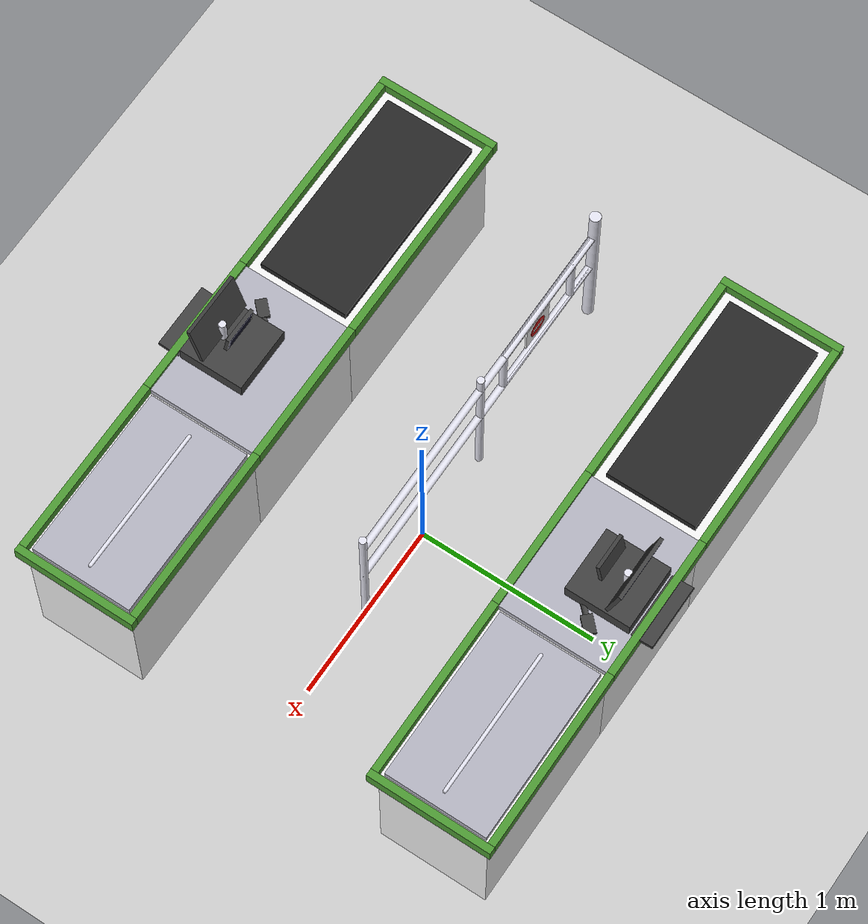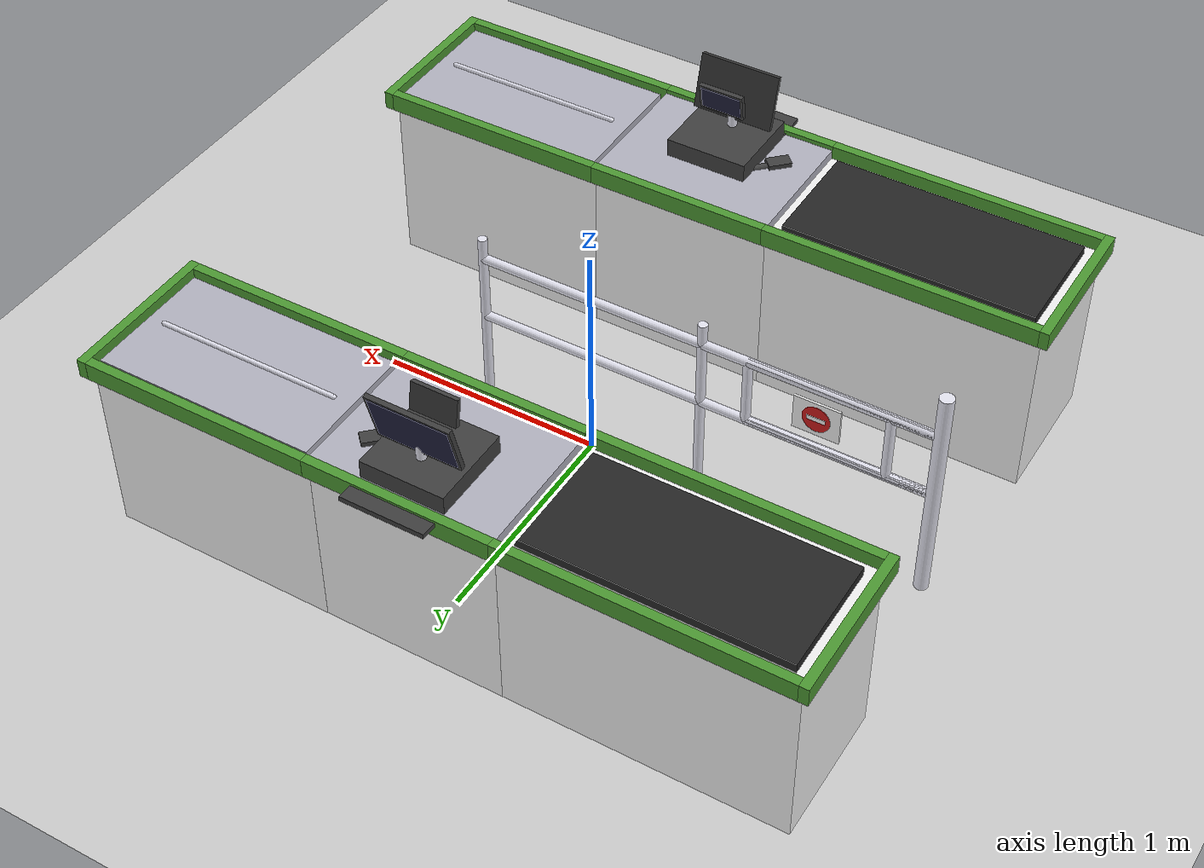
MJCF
<mujoco model="checkout_counter">
  <compiler angle="degree" coordinate="local" inertiafromgeom="true"/>

  <option timestep="0.01" gravity="0 0 -9.81" integrator="RK4"/>

  <asset>
    <texture type="skybox" builtin="gradient" rgb1="0.9 0.9 0.9" rgb2="0.5 0.5 0.5" width="512" height="307"/>

    <!-- Materials based on the reference image -->
    <material name="mat_body_white" rgba="0.95 0.95 0.95 1" specular="0.3" shininess="0.2"/>
    <material name="mat_trim_green" rgba="0.3 0.6 0.2 1" specular="0.5" shininess="0.5"/>
    <material name="mat_belt_black" rgba="0.15 0.15 0.15 1" specular="0.1" shininess="0.1" roughness="0.8"/>
    <material name="mat_stainless" rgba="0.7 0.7 0.75 1" specular="0.9" shininess="0.8" reflectance="0.3"/>
    <material name="mat_plastic_grey" rgba="0.25 0.25 0.25 1" specular="0.3" shininess="0.3"/>
    <material name="mat_screen" rgba="0.1 0.1 0.2 1" emission="0.5"/>
    <material name="mat_red_sign" rgba="0.8 0.1 0.1 1" specular="0.3" shininess="0.2"/>
    <material name="mat_metal_chrome" rgba="0.9 0.9 0.95 1" specular="1.0" shininess="0.9" reflectance="0.5"/>
    <material name="mat_basket_wire" rgba="0.8 0.8 0.8 1" specular="0.8" shininess="0.8"/>
  </asset>

  <worldbody>
    <light pos="2 2 4" dir="0 0 -1" diffuse="0.8 0.8 0.8"/>
    <geom name="floor" type="plane" size="5 5 0.1" rgba="0.8 0.8 0.8 1"/>

    <!--          LEFT CHECKOUT COUNTER             -->
    <body name="checkout_unit_1" pos="0 1.0 0">

        <!-- 1. Conveyor Belt Section -->
        <body name="conveyor_section_1" pos="-1.0 0 0">
            <!-- Main Cabinet Base -->
            <geom type="box" size="0.6 0.3 0.4" pos="0 0 0.4" material="mat_body_white"/>
            <!-- Conveyor Belt Surface -->
            <geom type="box" size="0.55 0.25 0.02" pos="0 0 0.82" material="mat_belt_black"/>
            <!-- Green Bumper/Trim -->
            <geom type="box" size="0.6 0.02 0.04" pos="0 -0.32 0.82" material="mat_trim_green"/>
            <geom type="box" size="0.6 0.02 0.04" pos="0 0.32 0.82" material="mat_trim_green"/>
            <geom type="box" size="0.02 0.34 0.04" pos="-0.62 0 0.82" material="mat_trim_green"/>
            <!-- Kickplate -->
            <geom type="box" size="0.55 0.25 0.05" pos="0 0 0.05" material="mat_plastic_grey"/>
        </body>

        <!-- 2. Cashier Station -->
        <body name="cashier_station_1" pos="0 0 0">
            <!-- Main Body -->
            <geom type="box" size="0.4 0.3 0.4" pos="0 0 0.4" material="mat_body_white"/>
            <!-- Countertop -->
            <geom type="box" size="0.4 0.3 0.02" pos="0 0 0.82" material="mat_stainless"/>
            <!-- Green Trim -->
            <geom type="box" size="0.4 0.02 0.04" pos="0 -0.32 0.82" material="mat_trim_green"/>
            <geom type="box" size="0.4 0.02 0.04" pos="0 0.32 0.82" material="mat_trim_green"/>
            <!-- POS System -->
            <body name="pos_system_1" pos="0 0.1 0.82">
                <!-- Cash Drawer -->
                <geom name="drawer_1" type="box" size="0.18 0.18 0.05" pos="0 0 0.05" material="mat_plastic_grey"/>

                <!-- Main Screen Stand -->
                <geom name="stand_1" type="cylinder" size="0.02 0.08" pos="0 0.05 0.15" material="mat_metal_chrome"/>

                <!-- Main Screen (Facing Cashier +y) -->
                <body name="screen_main_1" pos="0 0.08 0.25" euler="-15 0 0">
                    <geom type="box" size="0.18 0.01 0.12" material="mat_plastic_grey"/> <!-- Bezel -->
                    <geom type="box" size="0.17 0.001 0.11" pos="0 0.011 0" material="mat_screen"/> <!-- Screen -->
                </body>

                <!-- Customer Screen (Facing Customer -y) -->
                <body name="screen_cust_1" pos="0 -0.05 0.28" euler="10 0 0">
                     <geom type="box" size="0.1 0.01 0.06" material="mat_plastic_grey"/>
                     <geom type="box" size="0.09 0.001 0.05" pos="0 -0.011 0" material="mat_screen"/>
                </body>

                <!-- Keyboard -->
                <geom name="keyboard_1" type="box" size="0.18 0.06 0.01" pos="0 0.25 0.02" euler="5 0 0" material="mat_plastic_grey"/>

                <!-- Scanner Gun -->
                <body name="scanner_1" pos="0.25 0 0.02" euler="0 0 -45">
                    <geom type="box" size="0.03 0.05 0.02" material="mat_plastic_grey"/> <!-- Head -->
                    <geom type="capsule" fromto="0 -0.05 0 0 -0.12 0" size="0.015" material="mat_plastic_grey"/> <!-- Handle -->
                </body>
            </body>
        </body>

        <!-- 3. Bagging Area -->
        <body name="bagging_area_1" pos="0.9 0 0">
            <!-- Main Cabinet -->
            <geom type="box" size="0.5 0.3 0.4" pos="0 0 0.4" material="mat_body_white"/>
            <!-- Sloped Surface or Tray -->
            <geom type="box" size="0.48 0.28 0.02" pos="0 0 0.82" material="mat_stainless"/>
            <!-- Green Trim -->
            <geom type="box" size="0.5 0.02 0.04" pos="0 -0.32 0.82" material="mat_trim_green"/>
            <geom type="box" size="0.5 0.02 0.04" pos="0 0.32 0.82" material="mat_trim_green"/>
            <geom type="box" size="0.02 0.34 0.04" pos="0.52 0 0.82" material="mat_trim_green"/>
            <!-- Divider bar -->
            <geom type="capsule" fromto="-0.4 0 0.85 0.4 0 0.85" size="0.01" material="mat_metal_chrome"/>
        </body>
    </body>

    <!--          RIGHT CHECKOUT COUNTER            -->
    <body name="checkout_unit_2" pos="0 -1.0 0">

        <!-- 1. Conveyor Belt Section -->
        <body name="conveyor_section_2" pos="-1.0 0 0">
            <!-- Main Cabinet Base -->
            <geom type="box" size="0.6 0.3 0.4" pos="0 0 0.4" material="mat_body_white"/>
            <!-- Conveyor Belt Surface -->
            <geom type="box" size="0.55 0.25 0.02" pos="0 0 0.82" material="mat_belt_black"/>
            <!-- Green Bumper/Trim -->
            <geom type="box" size="0.6 0.02 0.04" pos="0 -0.32 0.82" material="mat_trim_green"/>
            <geom type="box" size="0.6 0.02 0.04" pos="0 0.32 0.82" material="mat_trim_green"/>
            <geom type="box" size="0.02 0.34 0.04" pos="-0.62 0 0.82" material="mat_trim_green"/>
            <!-- Kickplate -->
            <geom type="box" size="0.55 0.25 0.05" pos="0 0 0.05" material="mat_plastic_grey"/>
        </body>

        <!-- 2. Cashier Station -->
        <body name="cashier_station_2" pos="0 0 0">
            <!-- Main Body -->
            <geom type="box" size="0.4 0.3 0.4" pos="0 0 0.4" material="mat_body_white"/>
            <!-- Countertop -->
            <geom type="box" size="0.4 0.3 0.02" pos="0 0 0.82" material="mat_stainless"/>
            <!-- Green Trim -->
            <geom type="box" size="0.4 0.02 0.04" pos="0 -0.32 0.82" material="mat_trim_green"/>
            <geom type="box" size="0.4 0.02 0.04" pos="0 0.32 0.82" material="mat_trim_green"/>
            <!-- POS System -->
            <body name="pos_system_2" pos="0 -0.1 0.82" euler="0 0 180">
                <!-- Cash Drawer -->
                <geom name="drawer_2" type="box" size="0.18 0.18 0.05" pos="0 0 0.05" material="mat_plastic_grey"/>

                <!-- Main Screen Stand -->
                <geom name="stand_2" type="cylinder" size="0.02 0.08" pos="0 0.05 0.15" material="mat_metal_chrome"/>

                <!-- Main Screen (Facing Cashier -y due to body rotation) -->
                <body name="screen_main_2" pos="0 0.08 0.25" euler="-15 0 0">
                    <geom type="box" size="0.18 0.01 0.12" material="mat_plastic_grey"/> <!-- Bezel -->
                    <geom type="box" size="0.17 0.001 0.11" pos="0 0.011 0" material="mat_screen"/> <!-- Screen -->
                </body>

                <!-- Customer Screen (Facing Customer +y due to body rotation) -->
                <body name="screen_cust_2" pos="0 -0.05 0.28" euler="10 0 0">
                     <geom type="box" size="0.1 0.01 0.06" material="mat_plastic_grey"/>
                     <geom type="box" size="0.09 0.001 0.05" pos="0 -0.011 0" material="mat_screen"/>
                </body>

                <!-- Keyboard -->
                <geom name="keyboard_2" type="box" size="0.18 0.06 0.01" pos="0 0.25 0.02" euler="5 0 0" material="mat_plastic_grey"/>

                <!-- Scanner Gun -->
                <body name="scanner_2" pos="0.25 0 0.02" euler="0 0 -45">
                    <geom type="box" size="0.03 0.05 0.02" material="mat_plastic_grey"/> <!-- Head -->
                    <geom type="capsule" fromto="0 -0.05 0 0 -0.12 0" size="0.015" material="mat_plastic_grey"/> <!-- Handle -->
                </body>
            </body>
        </body>

        <!-- 3. Bagging Area -->
        <body name="bagging_area_2" pos="0.9 0 0">
            <!-- Main Cabinet -->
            <geom type="box" size="0.5 0.3 0.4" pos="0 0 0.4" material="mat_body_white"/>
            <!-- Sloped Surface or Tray -->
            <geom type="box" size="0.48 0.28 0.02" pos="0 0 0.82" material="mat_stainless"/>
            <!-- Green Trim -->
            <geom type="box" size="0.5 0.02 0.04" pos="0 -0.32 0.82" material="mat_trim_green"/>
            <geom type="box" size="0.5 0.02 0.04" pos="0 0.32 0.82" material="mat_trim_green"/>
            <geom type="box" size="0.02 0.34 0.04" pos="0.52 0 0.82" material="mat_trim_green"/>
            <!-- Divider bar -->
            <geom type="capsule" fromto="-0.4 0 0.85 0.4 0 0.85" size="0.01" material="mat_metal_chrome"/>
        </body>
    </body>

    <!--         SHARED CENTRAL BARRIER             -->
    <body name="central_barrier" pos="0 0 0">
         <!-- Long Railing dividing the two lanes -->
         <!-- Length covers conveyor and cashier area mostly -->

         <!-- Post 1 (Near conveyor start) -->
         <geom type="cylinder" size="0.02 0.45" pos="-1.5 0 0.45" material="mat_metal_chrome"/>
         <!-- Post 2 (Middle) -->
         <geom type="cylinder" size="0.02 0.45" pos="-0.5 0 0.45" material="mat_metal_chrome"/>
         <!-- Post 3 (Near cashier) -->
         <geom type="cylinder" size="0.02 0.45" pos="0.5 0 0.45" material="mat_metal_chrome"/>

         <!-- Horizontal Rails -->
         <!-- Top Rail -->
         <geom type="capsule" fromto="-1.5 0 0.8 0.5 0 0.8" size="0.02" material="mat_metal_chrome"/>
         <!-- Bottom Rail -->
         <geom type="capsule" fromto="-1.5 0 0.5 0.5 0 0.5" size="0.02" material="mat_metal_chrome"/>

         <!-- Entry Swing Gate (Attached to the start of the barrier) -->
         <body name="entry_gate" pos="-1.5 0 0">
            <geom type="cylinder" size="0.03 0.5" pos="0 0 0.5" material="mat_metal_chrome"/> <!-- Hinge Post -->

            <!-- Gate Swing Arm -->
            <body name="gate_arm" pos="0 0 0.8" euler="0 0 0">
                 <joint name="gate_hinge" axis="0 0 1" range="-90 90" damping="1"/>
                 <!-- Frame -->
                 <geom type="capsule" fromto="0 0 0 0.8 0 0" size="0.02" material="mat_metal_chrome"/>
                 <geom type="capsule" fromto="0 0 -0.3 0.8 0 -0.3" size="0.02" material="mat_metal_chrome"/>
                 <geom type="capsule" fromto="0.8 0 0 0.8 0 -0.3" size="0.02" material="mat_metal_chrome"/>
                 <geom type="capsule" fromto="0.2 0 0 0.2 0 -0.3" size="0.02" material="mat_metal_chrome"/>

                 <!-- Sign -->
                 <geom type="box" size="0.1 0.005 0.08" pos="0.5 0 -0.15" material="mat_body_white"/>
                 <geom type="cylinder" size="0.06 0.006" pos="0.5 0 -0.15" euler="90 0 0" material="mat_red_sign"/>
                 <geom type="box" size="0.04 0.007 0.01" pos="0.5 0 -0.15" material="mat_body_white"/>
            </body>
         </body>
    </body>

  </worldbody>
</mujoco>
